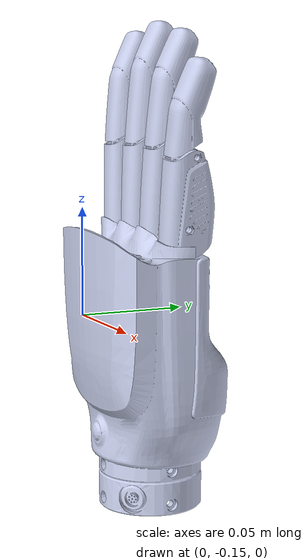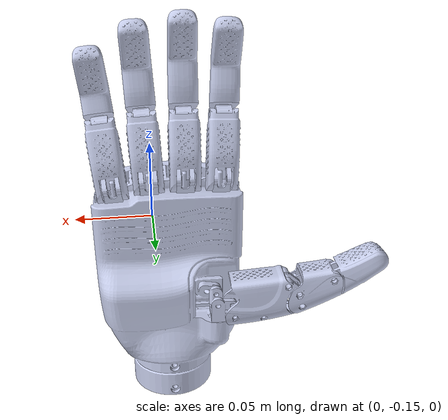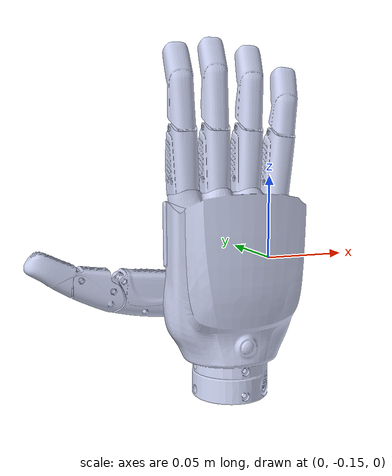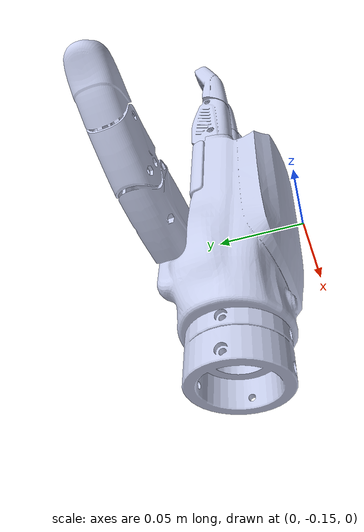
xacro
<?xml version="1.0" encoding="utf-8"?>
<robot xmlns:xacro="http://www.ros.org/wiki/xacro">

  <link name="right_hand_base_link">
    <inertial>
      <origin xyz="-0.00826856171690858 -0.115495645683634 -0.0283405186091888" rpy="0 0 0"/>
      <mass value="0.314090908651444"/>
      <inertia ixx="0.000270154676018588" ixy="-1.37017926233064E-06" ixz="6.45382821345028E-07"
               iyy="0.0003222626319271" iyz="1.70243916062846E-05" izz="0.000160476557328711"/>
    </inertial>
    <visual>
      <origin xyz="0 0 0" rpy="0 0 0"/>
      <geometry>
        <mesh filename="package://h1_2_inspire_description/meshes/hand_right/base_link.STL"/>
      </geometry>
      <material name="">
        <color rgba="0.792156862745098 0.819607843137255 0.933333333333333 1"/>
      </material>
    </visual>
    <collision>
      <origin xyz="0 0 0" rpy="0 0 0"/>
      <geometry>
        <mesh filename="package://h1_2_inspire_description/meshes/hand_right/base_link.STL"/>
      </geometry>
    </collision>
  </link>

  <link name="right_thumb_swing">
    <inertial>
      <origin xyz="-0.001897403655087 7.12516796909923E-05 0.00313589310434412" rpy="0 0 0"/>
      <mass value="0.00115518743162309"/>
      <inertia ixx="6.27834293959477E-08" ixy="-9.38445541803444E-10" ixz="-3.50236810587605E-09"
               iyy="3.78279141131513E-08" iyz="1.31528360070952E-10" izz="6.1816168438865E-08"/>
    </inertial>
    <visual>
      <origin xyz="0 0 0" rpy="0 0 0"/>
      <geometry>
        <mesh filename="package://h1_2_inspire_description/meshes/hand_right/right_thumb_swing.STL"/>
      </geometry>
      <material name="">
        <color rgba="0.792156862745098 0.819607843137255 0.933333333333333 1"/>
      </material>
    </visual>
    <collision>
      <origin xyz="0 0 0" rpy="0 0 0"/>
      <geometry>
        <mesh filename="package://h1_2_inspire_description/meshes/hand_right/right_thumb_swing.STL"/>
      </geometry>
    </collision>
  </link>

  <joint name="right_thumb_swing_joint" type="revolute">
    <origin xyz="-0.035227 -0.0908 -0.040206" rpy="0 0 0"/>
    <parent link="right_hand_base_link"/>
    <child link="right_thumb_swing"/>
    <axis xyz="0 0 -1"/>
    <limit lower="0" upper="1.70" effort="1" velocity="100"/>
  </joint>

  <link name="right_thumb_1">
    <inertial>
      <origin xyz="-0.0163208309809786 -0.00996672794459635 -0.00940273641037634" rpy="0 0 0"/>
      <mass value="0.035"/>
      <inertia ixx="1.05252775356938E-06" ixy="-8.8013589531825E-08" ixz="4.12297543062756E-10"
               iyy="1.12456993863274E-06" iyz="3.58528262599009E-10" izz="1.43633392322177E-06"/>
    </inertial>
    <visual>
      <origin xyz="0 0 0" rpy="0 0 0"/>
      <geometry>
        <mesh filename="package://h1_2_inspire_description/meshes/hand_right/right_thumb_1.STL"/>
      </geometry>
      <material name="">
        <color rgba="0.792156862745098 0.819607843137255 0.933333333333333 1"/>
      </material>
    </visual>
    <collision>
      <origin xyz="0 0 0" rpy="0 0 0"/>
      <geometry>
        <mesh filename="package://h1_2_inspire_description/meshes/hand_right/right_thumb_1.STL"/>
      </geometry>
    </collision>
  </link>

  <joint name="right_thumb_1_joint" type="revolute">
    <origin xyz="-0.0096402 0.0097687 0.00125" rpy="-1.5708 0 -0.037536"/>
    <parent link="right_thumb_swing"/>
    <child link="right_thumb_1"/>
    <axis xyz="0 0 1"/>
    <limit lower="0" upper="0.92" effort="1" velocity="100"/>
  </joint>

  <link name="right_thumb_2">
    <inertial>
      <origin xyz="-0.0100669921030146 -0.0027226860312175 -0.00854141424002414" rpy="0 0 0"/>
      <mass value="0.023"/>
      <inertia ixx="4.61650984659959E-07" ixy="-6.02617854200335E-08" ixz="4.49999330286846E-11"
               iyy="4.2100553287784E-07" iyz="2.1886405983307E-10" izz="4.38695633575155E-07"/>
    </inertial>
    <visual>
      <origin xyz="0 0 0" rpy="0 0 0"/>
      <geometry>
        <mesh filename="package://h1_2_inspire_description/meshes/hand_right/right_thumb_2.STL"/>
      </geometry>
      <material name="">
        <color rgba="0.792156862745098 0.819607843137255 0.933333333333333 1"/>
      </material>
    </visual>
    <collision>
      <origin xyz="0 0 0" rpy="0 0 0"/>
      <geometry>
        <mesh filename="package://h1_2_inspire_description/meshes/hand_right/right_thumb_2.STL"/>
      </geometry>
    </collision>
  </link>

  <joint name="right_thumb_2_joint" type="revolute">
    <origin xyz="-0.0385855343215257 -0.0137354280979689 -0.00085000000007604" rpy="0 0 0"/>
    <parent link="right_thumb_1"/>
    <child link="right_thumb_2"/>
    <axis xyz="0 0 1"/>
    <limit lower="0" upper="3.14" effort="1" velocity="100"/>
    <mimic joint="right_thumb_1_joint" multiplier="0.40" offset="0"/>
  </joint>

  <link name="right_thumb_3">
    <inertial>
      <origin xyz="-0.0166252667929019 -0.00439732092491903 -0.00874331047569411" rpy="0 0 0"/>
      <mass value="0.018"/>
      <inertia ixx="5.85505830748828E-07" ixy="-2.36405978862981E-07" ixz="-9.42185151685949E-10"
               iyy="8.21798877779441E-07" iyz="-6.15791569450789E-10" izz="9.25701229462772E-07"/>
    </inertial>
    <visual>
      <origin xyz="0 0 0" rpy="0 0 0"/>
      <geometry>
        <mesh filename="package://h1_2_inspire_description/meshes/hand_right/right_thumb_3.STL"/>
      </geometry>
      <material name="">
        <color rgba="0.792156862745098 0.819607843137255 0.933333333333333 1"/>
      </material>
    </visual>
    <collision>
      <origin xyz="0 0 0" rpy="0 0 0"/>
      <geometry>
        <mesh filename="package://h1_2_inspire_description/meshes/hand_right/right_thumb_3.STL"/>
      </geometry>
    </collision>
  </link>

  <joint name="right_thumb_3_joint" type="revolute">
    <origin xyz="-0.0204656980659991 -0.00837680232935447 0.000199999999999881" rpy="0 0 0"/>
    <parent link="right_thumb_2"/>
    <child link="right_thumb_3"/>
    <axis xyz="0 0 1"/>
    <limit lower="0" upper="3.14" effort="1" velocity="100"/>
    <mimic joint="right_thumb_1_joint" multiplier="0.60" offset="0"/>
  </joint>

  <link name="right_index_1">
    <inertial>
      <origin xyz="0.00219916454162671 -0.0122949545354551 -0.00779931609805271" rpy="0 0 0"/>
      <mass value="0.00719950629120704"/>
      <inertia ixx="1.28051762409609E-06" ixy="6.28742259934098E-08" ixz="8.85831478756991E-13"
               iyy="5.82545787352841E-07" iyz="-8.55749735433038E-11" izz="1.32913319060816E-06"/>
    </inertial>
    <visual>
      <origin xyz="0 0 0" rpy="0 0 0"/>
      <geometry>
        <mesh filename="package://h1_2_inspire_description/meshes/hand_right/right_index_1.STL"/>
      </geometry>
      <material name="">
        <color rgba="0.792156862745098 0.819607843137255 0.933333333333333 1"/>
      </material>
    </visual>
    <collision>
      <origin xyz="0 0 0" rpy="0 0 0"/>
      <geometry>
        <mesh filename="package://h1_2_inspire_description/meshes/hand_right/right_index_1.STL"/>
      </geometry>
    </collision>
  </link>

  <joint name="right_index_1_joint" type="revolute">
    <origin xyz="-0.048156 -0.11125 0.045404" rpy="-1.6057 0 1.5708"/>
    <parent link="right_hand_base_link"/>
    <child link="right_index_1"/>
    <axis xyz="0 0 1"/>
    <limit lower="0" upper="1.6" effort="1" velocity="100"/>
  </joint>

  <link name="right_index_2">
    <inertial>
      <origin xyz="-0.000690175178177488 -0.0256943199737118 -0.0074925254099278" rpy="0 0 0"/>
      <mass value="0.00968687528768598"/>
      <inertia ixx="2.26451337650877E-06" ixy="3.90524448356852E-07" ixz="3.56545732231415E-10"
               iyy="3.82394128669363E-07" iyz="-2.76896757225301E-09" izz="2.302471439937E-06"/>
    </inertial>
    <visual>
      <origin xyz="0 0 0" rpy="0 0 0"/>
      <geometry>
        <mesh filename="package://h1_2_inspire_description/meshes/hand_right/right_index_2.STL"/>
      </geometry>
      <material name="">
        <color rgba="0.792156862745098 0.819607843137255 0.933333333333333 1"/>
      </material>
    </visual>
    <collision>
      <origin xyz="0 0 0" rpy="0 0 0"/>
      <geometry>
        <mesh filename="package://h1_2_inspire_description/meshes/hand_right/right_index_2.STL"/>
      </geometry>
    </collision>
  </link>

  <joint name="right_index_2_joint" type="revolute">
    <origin xyz="0.00259487212105013 -0.0326721877470773 -0.000299999999999988" rpy="0 0 0"/>
    <parent link="right_index_1"/>
    <child link="right_index_2"/>
    <axis xyz="0 0 1"/>
    <limit lower="0" upper="1.6" effort="1" velocity="100"/>
    <mimic joint="right_index_1_joint" multiplier="1.05" offset="0"/>
  </joint>

  <link name="right_middle_1">
    <inertial>
      <origin xyz="0.00229271394242234 -0.0122778605414752 -0.00779931823074317" rpy="0 0 0"/>
      <mass value="0.00719950322487975"/>
      <inertia ixx="1.27951858905778E-06" ixy="6.81813021711601E-08" ixz="1.5855112157922E-12"
               iyy="5.83543537428456E-07" iyz="-8.56179612609339E-11" izz="1.32913234511164E-06"/>
    </inertial>
    <visual>
      <origin xyz="0 0 0" rpy="0 0 0"/>
      <geometry>
        <mesh filename="package://h1_2_inspire_description/meshes/hand_right/right_middle_1.STL"/>
      </geometry>
      <material name="">
        <color rgba="0.792156862745098 0.819607843137255 0.933333333333333 1"/>
      </material>
    </visual>
    <collision>
      <origin xyz="0 0 0" rpy="0 0 0"/>
      <geometry>
        <mesh filename="package://h1_2_inspire_description/meshes/hand_right/right_middle_1.STL"/>
      </geometry>
    </collision>
  </link>

  <joint name="right_middle_1_joint" type="revolute">
    <origin xyz="-0.026577 -0.11125 0.046044" rpy="-1.5708 0 1.5708"/>
    <parent link="right_hand_base_link"/>
    <child link="right_middle_1"/>
    <axis xyz="0 0 1"/>
    <limit lower="0" upper="1.6" effort="1" velocity="100"/>
  </joint>

  <link name="right_middle_2">
    <inertial>
      <origin xyz="-7.51983994427274E-05 -0.027448753770842 -0.00750059894166984" rpy="0 0 0"/>
      <mass value="0.0104611931926301"/>
      <inertia ixx="2.75831931773332E-06" ixy="4.66412841401028E-07" ixz="7.3576656177484E-12"
               iyy="4.22466538741155E-07" iyz="-1.79608426686722E-11" izz="2.80722617348706E-06"/>
    </inertial>
    <visual>
      <origin xyz="0 0 0" rpy="0 0 0"/>
      <geometry>
        <mesh filename="package://h1_2_inspire_description/meshes/hand_right/right_middle_2.STL"/>
      </geometry>
      <material name="">
        <color rgba="0.792156862745098 0.819607843137255 0.933333333333333 1"/>
      </material>
    </visual>
    <collision>
      <origin xyz="0 0 0" rpy="0 0 0"/>
      <geometry>
        <mesh filename="package://h1_2_inspire_description/meshes/hand_right/right_middle_2.STL"/>
      </geometry>
    </collision>
  </link>

  <joint name="right_middle_2_joint" type="revolute">
    <origin xyz="0.0028436 -0.032651 -0.0003" rpy="0 0 0"/>
    <parent link="right_middle_1"/>
    <child link="right_middle_2"/>
    <axis xyz="0 0 1"/>
    <limit lower="0" upper="1.6" effort="1" velocity="100"/>
    <mimic joint="right_middle_1_joint" multiplier="1.05" offset="0"/>
  </joint>

  <link name="right_ring_1">
    <inertial>
      <origin xyz="0.00240530428455067 -0.0122563079467745 -0.00779931923444504" rpy="0 0 0"/>
      <mass value="0.00719949770218713"/>
      <inertia ixx="1.27820682409824E-06" ixy="7.45572429780095E-08" ixz="2.25718181777012E-12"
               iyy="5.84853511073516E-07" iyz="-8.5622233041164E-11" izz="1.32913088941838E-06"/>
    </inertial>
    <visual>
      <origin xyz="0 0 0" rpy="0 0 0"/>
      <geometry>
        <mesh filename="package://h1_2_inspire_description/meshes/hand_right/right_ring_1.STL"/>
      </geometry>
      <material name="">
        <color rgba="0.792156862745098 0.819607843137255 0.933333333333333 1"/>
      </material>
    </visual>
    <collision>
      <origin xyz="0 0 0" rpy="0 0 0"/>
      <geometry>
        <mesh filename="package://h1_2_inspire_description/meshes/hand_right/right_ring_1.STL"/>
      </geometry>
    </collision>
  </link>

  <joint name="right_ring_1_joint" type="revolute">
    <origin xyz="-0.004945 -0.11125 0.045939" rpy="-1.5184 0 1.5708"/>
    <parent link="right_hand_base_link"/>
    <child link="right_ring_1"/>
    <axis xyz="0 0 1"/>
    <limit lower="0" upper="1.6" effort="1" velocity="100"/>
  </joint>

  <link name="right_ring_2">
    <inertial>
      <origin xyz="-0.000667145407605998 -0.0256949163202511 -0.00749252997688842" rpy="0 0 0"/>
      <mass value="0.00968685177133057"/>
      <inertia ixx="2.26381138740299E-06" ixy="3.92210300202205E-07" ixz="3.58404653503586E-10"
               iyy="3.83095000534084E-07" iyz="-2.77027363965472E-09" izz="2.30247104599333E-06"/>
    </inertial>
    <visual>
      <origin xyz="0 0 0" rpy="0 0 0"/>
      <geometry>
        <mesh filename="package://h1_2_inspire_description/meshes/hand_right/right_ring_2.STL"/>
      </geometry>
      <material name="">
        <color rgba="0.792156862745098 0.819607843137255 0.933333333333333 1"/>
      </material>
    </visual>
    <collision>
      <origin xyz="0 0 0" rpy="0 0 0"/>
      <geometry>
        <mesh filename="package://h1_2_inspire_description/meshes/hand_right/right_ring_2.STL"/>
      </geometry>
    </collision>
  </link>

  <joint name="right_ring_2_joint" type="revolute">
    <origin xyz="0.0031431 -0.032624 -0.0003" rpy="0 0 0"/>
    <parent link="right_ring_1"/>
    <child link="right_ring_2"/>
    <axis xyz="0 0 1"/>
    <limit lower="0" upper="1.6" effort="1" velocity="100"/>
    <mimic joint="right_ring_1_joint" multiplier="1.05" offset="0"/>
  </joint>

  <link name="right_little_1">
    <inertial>
      <origin xyz="0.0020908902145567 -0.0123138388094518 -0.00779930416612102" rpy="0 0 0"/>
      <mass value="0.00719949424831882"/>
      <inertia ixx="1.28158473132988E-06" ixy="5.67213995105241E-08" ixz="3.81932384005559E-13"
               iyy="5.81492545898195E-07" iyz="-8.62730752553906E-11" izz="1.32914698853052E-06"/>
    </inertial>
    <visual>
      <origin xyz="0 0 0" rpy="0 0 0"/>
      <geometry>
        <mesh filename="package://h1_2_inspire_description/meshes/hand_right/right_little_1.STL"/>
      </geometry>
      <material name="">
        <color rgba="0.792156862745098 0.819607843137255 0.933333333333333 1"/>
      </material>
    </visual>
    <collision>
      <origin xyz="0 0 0" rpy="0 0 0"/>
      <geometry>
        <mesh filename="package://h1_2_inspire_description/meshes/hand_right/right_little_1.STL"/>
      </geometry>
    </collision>
  </link>

  <joint name="right_little_1_joint" type="revolute">
    <origin xyz="0.016446 -0.11125 0.042817" rpy="-1.4661 0 1.5708"/>
    <parent link="right_hand_base_link"/>
    <child link="right_little_1"/>
    <axis xyz="0 0 1"/>
    <limit lower="0" upper="1.6" effort="1" velocity="100"/>
  </joint>

  <link name="right_little_2">
    <inertial>
      <origin xyz="-0.0017604035921492 -0.0209002097557272 -0.00750031127302827" rpy="0 0 0"/>
      <mass value="0.00759259232694104"/>
      <inertia ixx="1.2354235368985E-06" ixy="2.15945048600066E-07" ixz="3.12205526892557E-12"
               iyy="2.72718801980276E-07" iyz="-1.27574096139233E-11" izz="1.23906813966421E-06"/>
    </inertial>
    <visual>
      <origin xyz="0 0 0" rpy="0 0 0"/>
      <geometry>
        <mesh filename="package://h1_2_inspire_description/meshes/hand_right/right_little_2.STL"/>
      </geometry>
      <material name="">
        <color rgba="0.792156862745098 0.819607843137255 0.933333333333333 1"/>
      </material>
    </visual>
    <collision>
      <origin xyz="0 0 0" rpy="0 0 0"/>
      <geometry>
        <mesh filename="package://h1_2_inspire_description/meshes/hand_right/right_little_2.STL"/>
      </geometry>
    </collision>
  </link>

  <joint name="right_little_2_joint" type="revolute">
    <origin xyz="0.0023072 -0.032694 -0.0003" rpy="0 0 0"/>
    <parent link="right_little_1"/>
    <child link="right_little_2"/>
    <axis xyz="0 0 1"/>
    <limit lower="0" upper="1.6" effort="1" velocity="100"/>
    <mimic joint="right_little_1_joint" multiplier="1.05" offset="0"/>
  </joint>

</robot>
